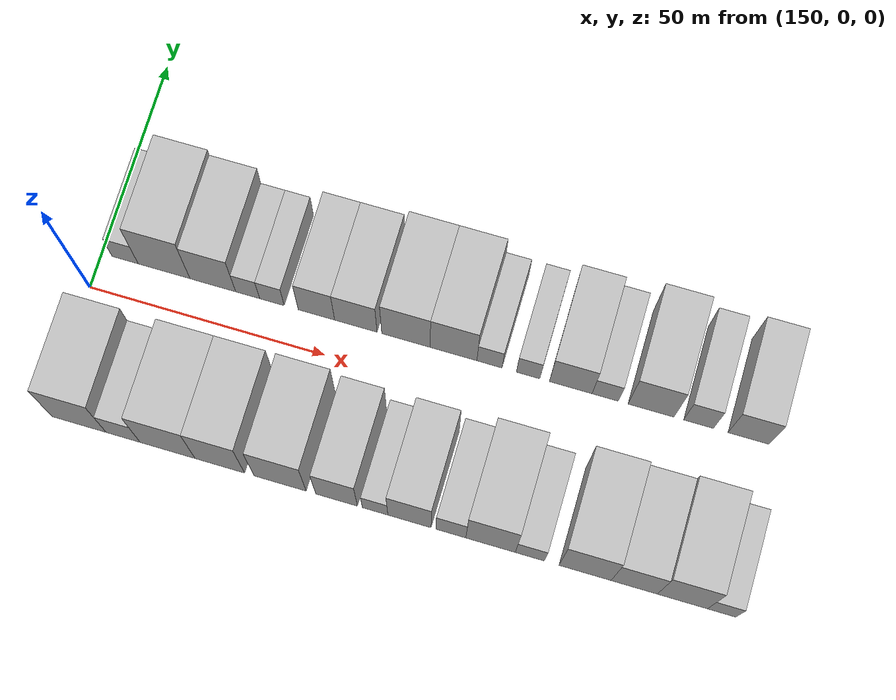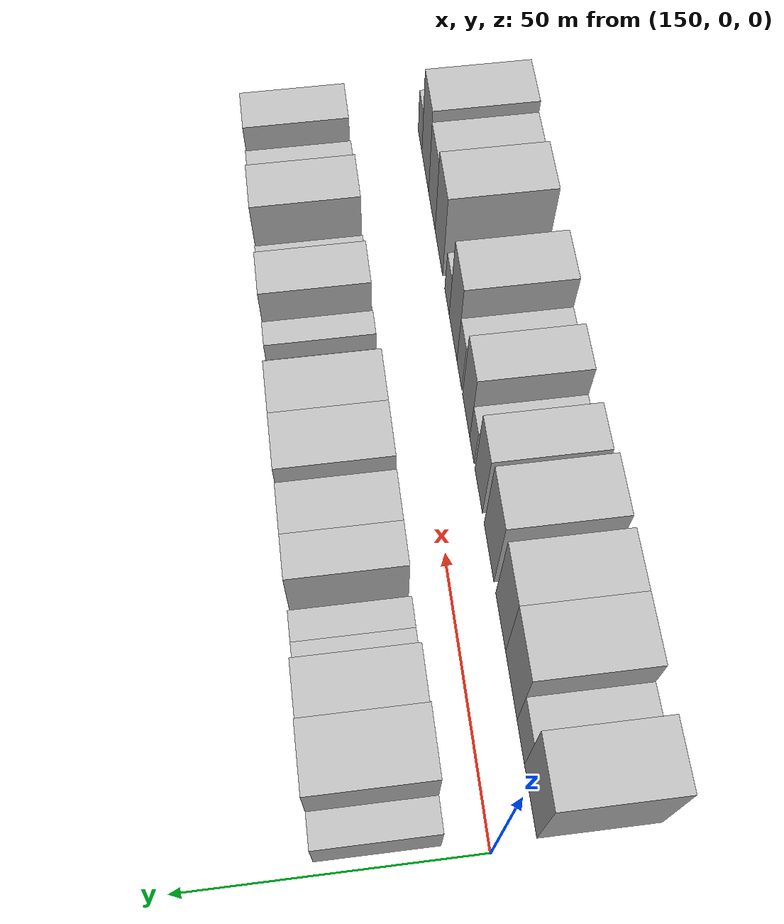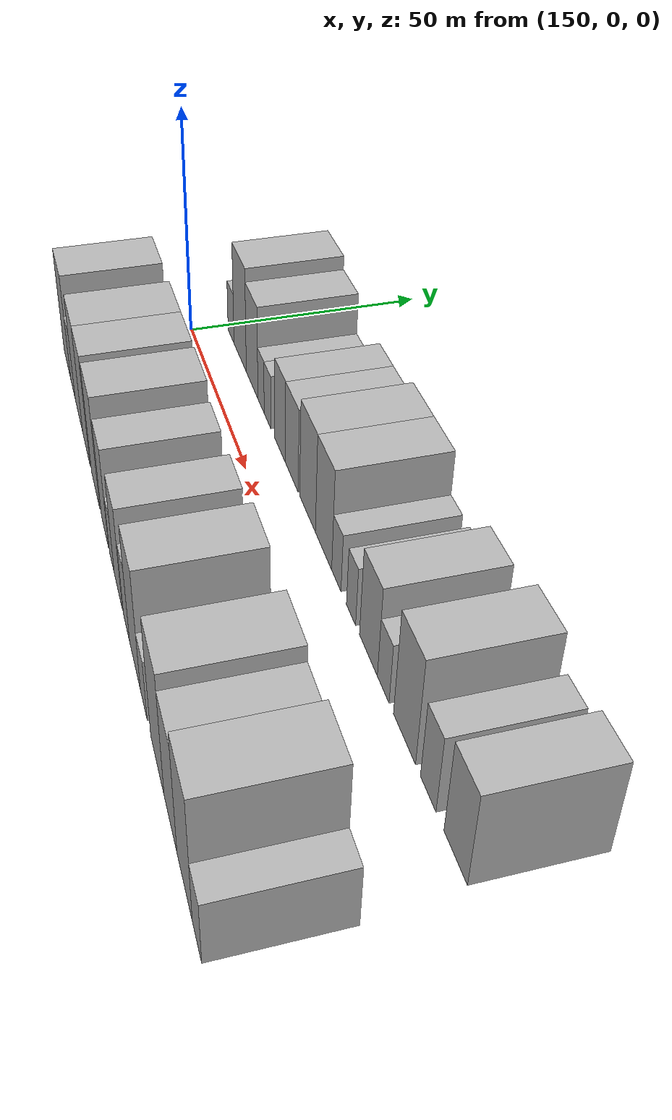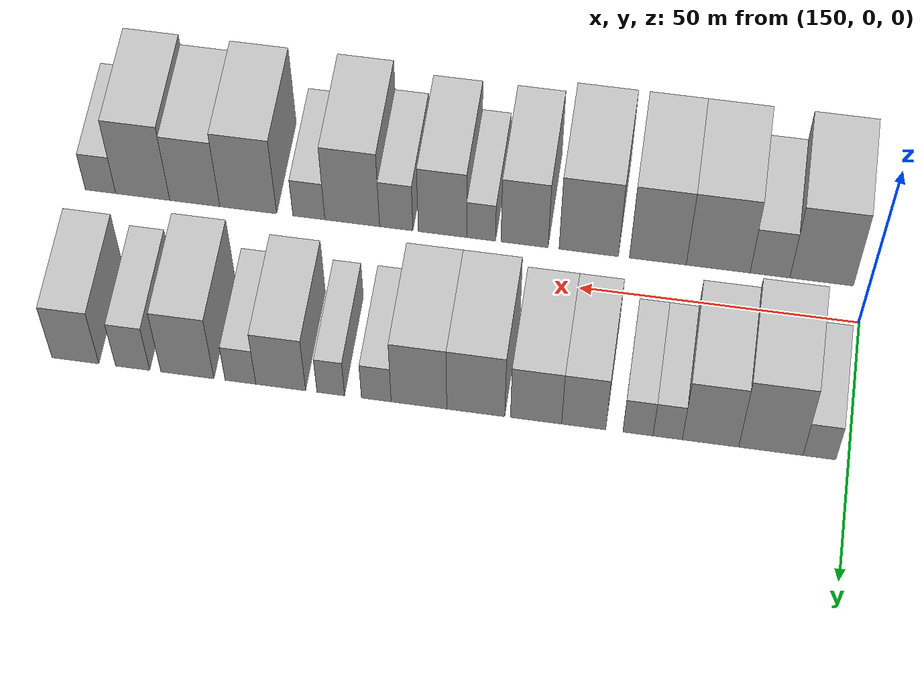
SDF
<sdf version="1.6">
 <world name="default">
  <model name="building_15">
   <static>1</static>
   <pose>154.9578 17.5000 0 0.000000 0.000000 1.570796</pose>
   <link name="link">
    <pose>0 0 6.00 0 0 0</pose>
    <collision name="collision"><geometry><box><size>20.0000 5.6526 12.0000</size></box></geometry></collision>
    <visual name="visual">
     <cast_shadows>0</cast_shadows>
     <geometry><box><size>20.0000 5.6526 12.0000</size></box></geometry>
     <material>
      <script>
       <uri>model://HANNAS_wall/materials/scripts</uri>
       <uri>model://HANNAS_wall/materials/textures</uri>
       <name>vrc/HANNAS_wall</name>
      </script>
     </material>
    </visual>
   </link>
  </model>
  <model name="building_16">
   <static>1</static>
   <pose>163.3459 17.5000 0 0.000000 0.000000 1.570796</pose>
   <link name="link">
    <pose>0 0 12.00 0 0 0</pose>
    <collision name="collision"><geometry><box><size>20.0000 11.1237 24.0000</size></box></geometry></collision>
    <visual name="visual">
     <cast_shadows>0</cast_shadows>
     <geometry><box><size>20.0000 11.1237 24.0000</size></box></geometry>
     <material>
      <script>
       <uri>model://HANNAS_wall/materials/scripts</uri>
       <uri>model://HANNAS_wall/materials/textures</uri>
       <name>vrc/HANNAS_wall</name>
      </script>
     </material>
    </visual>
   </link>
  </model>
  <model name="building_17">
   <static>1</static>
   <pose>173.8073 17.5000 0 0.000000 0.000000 1.570796</pose>
   <link name="link">
    <pose>0 0 10.50 0 0 0</pose>
    <collision name="collision"><geometry><box><size>20.0000 9.7992 21.0000</size></box></geometry></collision>
    <visual name="visual">
     <cast_shadows>0</cast_shadows>
     <geometry><box><size>20.0000 9.7992 21.0000</size></box></geometry>
     <material>
      <script>
       <uri>model://HANNAS_wall/materials/scripts</uri>
       <uri>model://HANNAS_wall/materials/textures</uri>
       <name>vrc/HANNAS_wall</name>
      </script>
     </material>
    </visual>
   </link>
  </model>
  <model name="building_18">
   <static>1</static>
   <pose>181.2581 17.5000 0 0.000000 0.000000 1.570796</pose>
   <link name="link">
    <pose>0 0 6.00 0 0 0</pose>
    <collision name="collision"><geometry><box><size>20.0000 5.1023 12.0000</size></box></geometry></collision>
    <visual name="visual">
     <cast_shadows>0</cast_shadows>
     <geometry><box><size>20.0000 5.1023 12.0000</size></box></geometry>
     <material>
      <script>
       <uri>model://HANNAS_wall/materials/scripts</uri>
       <uri>model://HANNAS_wall/materials/textures</uri>
       <name>vrc/HANNAS_wall</name>
      </script>
     </material>
    </visual>
   </link>
  </model>
  <model name="building_19">
   <static>1</static>
   <pose>186.4269 17.5000 0 0.000000 0.000000 1.570796</pose>
   <link name="link">
    <pose>0 0 6.00 0 0 0</pose>
    <collision name="collision"><geometry><box><size>20.0000 5.2354 12.0000</size></box></geometry></collision>
    <visual name="visual">
     <cast_shadows>0</cast_shadows>
     <geometry><box><size>20.0000 5.2354 12.0000</size></box></geometry>
     <material>
      <script>
       <uri>model://HANNAS_wall/materials/scripts</uri>
       <uri>model://HANNAS_wall/materials/textures</uri>
       <name>vrc/HANNAS_wall</name>
      </script>
     </material>
    </visual>
   </link>
  </model>
  <model name="building_20">
   <static>1</static>
   <pose>195.9037 17.5000 0 0.000000 0.000000 1.570796</pose>
   <link name="link">
    <pose>0 0 9.00 0 0 0</pose>
    <collision name="collision"><geometry><box><size>20.0000 7.7182 18.0000</size></box></geometry></collision>
    <visual name="visual">
     <cast_shadows>0</cast_shadows>
     <geometry><box><size>20.0000 7.7182 18.0000</size></box></geometry>
     <material>
      <script>
       <uri>model://HANNAS_wall/materials/scripts</uri>
       <uri>model://HANNAS_wall/materials/textures</uri>
       <name>vrc/HANNAS_wall</name>
      </script>
     </material>
    </visual>
   </link>
  </model>
  <model name="building_21">
   <static>1</static>
   <pose>204.2442 17.5000 0 0.000000 0.000000 1.570796</pose>
   <link name="link">
    <pose>0 0 9.00 0 0 0</pose>
    <collision name="collision"><geometry><box><size>20.0000 8.9629 18.0000</size></box></geometry></collision>
    <visual name="visual">
     <cast_shadows>0</cast_shadows>
     <geometry><box><size>20.0000 8.9629 18.0000</size></box></geometry>
     <material>
      <script>
       <uri>model://HANNAS_wall/materials/scripts</uri>
       <uri>model://HANNAS_wall/materials/textures</uri>
       <name>vrc/HANNAS_wall</name>
      </script>
     </material>
    </visual>
   </link>
  </model>
  <model name="building_22">
   <static>1</static>
   <pose>214.8280 17.5000 0 0.000000 0.000000 1.570796</pose>
   <link name="link">
    <pose>0 0 10.50 0 0 0</pose>
    <collision name="collision"><geometry><box><size>20.0000 10.2048 21.0000</size></box></geometry></collision>
    <visual name="visual">
     <cast_shadows>0</cast_shadows>
     <geometry><box><size>20.0000 10.2048 21.0000</size></box></geometry>
     <material>
      <script>
       <uri>model://HANNAS_wall/materials/scripts</uri>
       <uri>model://HANNAS_wall/materials/textures</uri>
       <name>vrc/HANNAS_wall</name>
      </script>
     </material>
    </visual>
   </link>
  </model>
  <model name="building_23">
   <static>1</static>
   <pose>224.8316 17.5000 0 0.000000 0.000000 1.570796</pose>
   <link name="link">
    <pose>0 0 10.50 0 0 0</pose>
    <collision name="collision"><geometry><box><size>20.0000 9.8024 21.0000</size></box></geometry></collision>
    <visual name="visual">
     <cast_shadows>0</cast_shadows>
     <geometry><box><size>20.0000 9.8024 21.0000</size></box></geometry>
     <material>
      <script>
       <uri>model://HANNAS_wall/materials/scripts</uri>
       <uri>model://HANNAS_wall/materials/textures</uri>
       <name>vrc/HANNAS_wall</name>
      </script>
     </material>
    </visual>
   </link>
  </model>
  <model name="building_24">
   <static>1</static>
   <pose>232.3631 17.5000 0 0.000000 0.000000 1.570796</pose>
   <link name="link">
    <pose>0 0 6.00 0 0 0</pose>
    <collision name="collision"><geometry><box><size>20.0000 5.2606 12.0000</size></box></geometry></collision>
    <visual name="visual">
     <cast_shadows>0</cast_shadows>
     <geometry><box><size>20.0000 5.2606 12.0000</size></box></geometry>
     <material>
      <script>
       <uri>model://HANNAS_wall/materials/scripts</uri>
       <uri>model://HANNAS_wall/materials/textures</uri>
       <name>vrc/HANNAS_wall</name>
      </script>
     </material>
    </visual>
   </link>
  </model>
  <model name="building_25">
   <static>1</static>
   <pose>240.4397 17.5000 0 0.000000 0.000000 1.570796</pose>
   <link name="link">
    <pose>0 0 6.00 0 0 0</pose>
    <collision name="collision"><geometry><box><size>20.0000 4.8925 12.0000</size></box></geometry></collision>
    <visual name="visual">
     <cast_shadows>0</cast_shadows>
     <geometry><box><size>20.0000 4.8925 12.0000</size></box></geometry>
     <material>
      <script>
       <uri>model://HANNAS_wall/materials/scripts</uri>
       <uri>model://HANNAS_wall/materials/textures</uri>
       <name>vrc/HANNAS_wall</name>
      </script>
     </material>
    </visual>
   </link>
  </model>
  <model name="building_26">
   <static>1</static>
   <pose>249.3211 17.5000 0 0.000000 0.000000 1.570796</pose>
   <link name="link">
    <pose>0 0 9.00 0 0 0</pose>
    <collision name="collision"><geometry><box><size>20.0000 8.8703 18.0000</size></box></geometry></collision>
    <visual name="visual">
     <cast_shadows>0</cast_shadows>
     <geometry><box><size>20.0000 8.8703 18.0000</size></box></geometry>
     <material>
      <script>
       <uri>model://HANNAS_wall/materials/scripts</uri>
       <uri>model://HANNAS_wall/materials/textures</uri>
       <name>vrc/HANNAS_wall</name>
      </script>
     </material>
    </visual>
   </link>
  </model>
  <model name="building_27">
   <static>1</static>
   <pose>256.4935 17.5000 0 0.000000 0.000000 1.570796</pose>
   <link name="link">
    <pose>0 0 6.00 0 0 0</pose>
    <collision name="collision"><geometry><box><size>20.0000 5.4745 12.0000</size></box></geometry></collision>
    <visual name="visual">
     <cast_shadows>0</cast_shadows>
     <geometry><box><size>20.0000 5.4745 12.0000</size></box></geometry>
     <material>
      <script>
       <uri>model://HANNAS_wall/materials/scripts</uri>
       <uri>model://HANNAS_wall/materials/textures</uri>
       <name>vrc/HANNAS_wall</name>
      </script>
     </material>
    </visual>
   </link>
  </model>
  <model name="building_28">
   <static>1</static>
   <pose>265.9769 17.5000 0 0.000000 0.000000 1.570796</pose>
   <link name="link">
    <pose>0 0 10.50 0 0 0</pose>
    <collision name="collision"><geometry><box><size>20.0000 9.4924 21.0000</size></box></geometry></collision>
    <visual name="visual">
     <cast_shadows>0</cast_shadows>
     <geometry><box><size>20.0000 9.4924 21.0000</size></box></geometry>
     <material>
      <script>
       <uri>model://HANNAS_wall/materials/scripts</uri>
       <uri>model://HANNAS_wall/materials/textures</uri>
       <name>vrc/HANNAS_wall</name>
      </script>
     </material>
    </visual>
   </link>
  </model>
  <model name="building_29">
   <static>1</static>
   <pose>275.7890 17.5000 0 0.000000 0.000000 1.570796</pose>
   <link name="link">
    <pose>0 0 7.50 0 0 0</pose>
    <collision name="collision"><geometry><box><size>20.0000 6.1318 15.0000</size></box></geometry></collision>
    <visual name="visual">
     <cast_shadows>0</cast_shadows>
     <geometry><box><size>20.0000 6.1318 15.0000</size></box></geometry>
     <material>
      <script>
       <uri>model://HANNAS_wall/materials/scripts</uri>
       <uri>model://HANNAS_wall/materials/textures</uri>
       <name>vrc/HANNAS_wall</name>
      </script>
     </material>
    </visual>
   </link>
  </model>
  <model name="building_30">
   <static>1</static>
   <pose>286.0715 17.5000 0 0.000000 0.000000 1.570796</pose>
   <link name="link">
    <pose>0 0 9.00 0 0 0</pose>
    <collision name="collision"><geometry><box><size>20.0000 8.4333 18.0000</size></box></geometry></collision>
    <visual name="visual">
     <cast_shadows>0</cast_shadows>
     <geometry><box><size>20.0000 8.4333 18.0000</size></box></geometry>
     <material>
      <script>
       <uri>model://HANNAS_wall/materials/scripts</uri>
       <uri>model://HANNAS_wall/materials/textures</uri>
       <name>vrc/HANNAS_wall</name>
      </script>
     </material>
    </visual>
   </link>
  </model>
  <model name="building_45">
   <static>1</static>
   <pose>157.1561 -17.5000 0 0.000000 0.000000 1.570796</pose>
   <link name="link">
    <pose>0 0 12.00 0 0 0</pose>
    <collision name="collision"><geometry><box><size>20.0000 11.4148 24.0000</size></box></geometry></collision>
    <visual name="visual">
     <cast_shadows>0</cast_shadows>
     <geometry><box><size>20.0000 11.4148 24.0000</size></box></geometry>
     <material>
      <script>
       <uri>model://HANNAS_wall/materials/scripts</uri>
       <uri>model://HANNAS_wall/materials/textures</uri>
       <name>vrc/HANNAS_wall</name>
      </script>
     </material>
    </visual>
   </link>
  </model>
  <model name="building_46">
   <static>1</static>
   <pose>166.4401 -17.5000 0 0.000000 0.000000 1.570796</pose>
   <link name="link">
    <pose>0 0 7.50 0 0 0</pose>
    <collision name="collision"><geometry><box><size>20.0000 7.1533 15.0000</size></box></geometry></collision>
    <visual name="visual">
     <cast_shadows>0</cast_shadows>
     <geometry><box><size>20.0000 7.1533 15.0000</size></box></geometry>
     <material>
      <script>
       <uri>model://HANNAS_wall/materials/scripts</uri>
       <uri>model://HANNAS_wall/materials/textures</uri>
       <name>vrc/HANNAS_wall</name>
      </script>
     </material>
    </visual>
   </link>
  </model>
  <model name="building_47">
   <static>1</static>
   <pose>175.7845 -17.5000 0 0.000000 0.000000 1.570796</pose>
   <link name="link">
    <pose>0 0 12.00 0 0 0</pose>
    <collision name="collision"><geometry><box><size>20.0000 11.5354 24.0000</size></box></geometry></collision>
    <visual name="visual">
     <cast_shadows>0</cast_shadows>
     <geometry><box><size>20.0000 11.5354 24.0000</size></box></geometry>
     <material>
      <script>
       <uri>model://HANNAS_wall/materials/scripts</uri>
       <uri>model://HANNAS_wall/materials/textures</uri>
       <name>vrc/HANNAS_wall</name>
      </script>
     </material>
    </visual>
   </link>
  </model>
  <model name="building_48">
   <static>1</static>
   <pose>186.6965 -17.5000 0 0.000000 0.000000 1.570796</pose>
   <link name="link">
    <pose>0 0 12.00 0 0 0</pose>
    <collision name="collision"><geometry><box><size>20.0000 10.2885 24.0000</size></box></geometry></collision>
    <visual name="visual">
     <cast_shadows>0</cast_shadows>
     <geometry><box><size>20.0000 10.2885 24.0000</size></box></geometry>
     <material>
      <script>
       <uri>model://HANNAS_wall/materials/scripts</uri>
       <uri>model://HANNAS_wall/materials/textures</uri>
       <name>vrc/HANNAS_wall</name>
      </script>
     </material>
    </visual>
   </link>
  </model>
  <model name="building_49">
   <static>1</static>
   <pose>199.2378 -17.5000 0 0.000000 0.000000 1.570796</pose>
   <link name="link">
    <pose>0 0 12.00 0 0 0</pose>
    <collision name="collision"><geometry><box><size>20.0000 10.7942 24.0000</size></box></geometry></collision>
    <visual name="visual">
     <cast_shadows>0</cast_shadows>
     <geometry><box><size>20.0000 10.7942 24.0000</size></box></geometry>
     <material>
      <script>
       <uri>model://HANNAS_wall/materials/scripts</uri>
       <uri>model://HANNAS_wall/materials/textures</uri>
       <name>vrc/HANNAS_wall</name>
      </script>
     </material>
    </visual>
   </link>
  </model>
  <model name="building_50">
   <static>1</static>
   <pose>210.9347 -17.5000 0 0.000000 0.000000 1.570796</pose>
   <link name="link">
    <pose>0 0 10.50 0 0 0</pose>
    <collision name="collision"><geometry><box><size>20.0000 8.5995 21.0000</size></box></geometry></collision>
    <visual name="visual">
     <cast_shadows>0</cast_shadows>
     <geometry><box><size>20.0000 8.5995 21.0000</size></box></geometry>
     <material>
      <script>
       <uri>model://HANNAS_wall/materials/scripts</uri>
       <uri>model://HANNAS_wall/materials/textures</uri>
       <name>vrc/HANNAS_wall</name>
      </script>
     </material>
    </visual>
   </link>
  </model>
  <model name="building_51">
   <static>1</static>
   <pose>218.8745 -17.5000 0 0.000000 0.000000 1.570796</pose>
   <link name="link">
    <pose>0 0 6.00 0 0 0</pose>
    <collision name="collision"><geometry><box><size>20.0000 5.2801 12.0000</size></box></geometry></collision>
    <visual name="visual">
     <cast_shadows>0</cast_shadows>
     <geometry><box><size>20.0000 5.2801 12.0000</size></box></geometry>
     <material>
      <script>
       <uri>model://HANNAS_wall/materials/scripts</uri>
       <uri>model://HANNAS_wall/materials/textures</uri>
       <name>vrc/HANNAS_wall</name>
      </script>
     </material>
    </visual>
   </link>
  </model>
  <model name="building_52">
   <static>1</static>
   <pose>225.9429 -17.5000 0 0.000000 0.000000 1.570796</pose>
   <link name="link">
    <pose>0 0 10.50 0 0 0</pose>
    <collision name="collision"><geometry><box><size>20.0000 8.8569 21.0000</size></box></geometry></collision>
    <visual name="visual">
     <cast_shadows>0</cast_shadows>
     <geometry><box><size>20.0000 8.8569 21.0000</size></box></geometry>
     <material>
      <script>
       <uri>model://HANNAS_wall/materials/scripts</uri>
       <uri>model://HANNAS_wall/materials/textures</uri>
       <name>vrc/HANNAS_wall</name>
      </script>
     </material>
    </visual>
   </link>
  </model>
  <model name="building_53">
   <static>1</static>
   <pose>234.4345 -17.5000 0 0.000000 0.000000 1.570796</pose>
   <link name="link">
    <pose>0 0 7.50 0 0 0</pose>
    <collision name="collision"><geometry><box><size>20.0000 6.1263 15.0000</size></box></geometry></collision>
    <visual name="visual">
     <cast_shadows>0</cast_shadows>
     <geometry><box><size>20.0000 6.1263 15.0000</size></box></geometry>
     <material>
      <script>
       <uri>model://HANNAS_wall/materials/scripts</uri>
       <uri>model://HANNAS_wall/materials/textures</uri>
       <name>vrc/HANNAS_wall</name>
      </script>
     </material>
    </visual>
   </link>
  </model>
  <model name="building_54">
   <static>1</static>
   <pose>242.5474 -17.5000 0 0.000000 0.000000 1.570796</pose>
   <link name="link">
    <pose>0 0 12.00 0 0 0</pose>
    <collision name="collision"><geometry><box><size>20.0000 10.0995 24.0000</size></box></geometry></collision>
    <visual name="visual">
     <cast_shadows>0</cast_shadows>
     <geometry><box><size>20.0000 10.0995 24.0000</size></box></geometry>
     <material>
      <script>
       <uri>model://HANNAS_wall/materials/scripts</uri>
       <uri>model://HANNAS_wall/materials/textures</uri>
       <name>vrc/HANNAS_wall</name>
      </script>
     </material>
    </visual>
   </link>
  </model>
  <model name="building_55">
   <static>1</static>
   <pose>250.5507 -17.5000 0 0.000000 0.000000 1.570796</pose>
   <link name="link">
    <pose>0 0 6.00 0 0 0</pose>
    <collision name="collision"><geometry><box><size>20.0000 5.9071 12.0000</size></box></geometry></collision>
    <visual name="visual">
     <cast_shadows>0</cast_shadows>
     <geometry><box><size>20.0000 5.9071 12.0000</size></box></geometry>
     <material>
      <script>
       <uri>model://HANNAS_wall/materials/scripts</uri>
       <uri>model://HANNAS_wall/materials/textures</uri>
       <name>vrc/HANNAS_wall</name>
      </script>
     </material>
    </visual>
   </link>
  </model>
  <model name="building_56">
   <static>1</static>
   <pose>261.7849 -17.5000 0 0.000000 0.000000 1.570796</pose>
   <link name="link">
    <pose>0 0 12.00 0 0 0</pose>
    <collision name="collision"><geometry><box><size>20.0000 10.5612 24.0000</size></box></geometry></collision>
    <visual name="visual">
     <cast_shadows>0</cast_shadows>
     <geometry><box><size>20.0000 10.5612 24.0000</size></box></geometry>
     <material>
      <script>
       <uri>model://HANNAS_wall/materials/scripts</uri>
       <uri>model://HANNAS_wall/materials/textures</uri>
       <name>vrc/HANNAS_wall</name>
      </script>
     </material>
    </visual>
   </link>
  </model>
  <model name="building_57">
   <static>1</static>
   <pose>271.7252 -17.5000 0 0.000000 0.000000 1.570796</pose>
   <link name="link">
    <pose>0 0 10.50 0 0 0</pose>
    <collision name="collision"><geometry><box><size>20.0000 9.3195 21.0000</size></box></geometry></collision>
    <visual name="visual">
     <cast_shadows>0</cast_shadows>
     <geometry><box><size>20.0000 9.3195 21.0000</size></box></geometry>
     <material>
      <script>
       <uri>model://HANNAS_wall/materials/scripts</uri>
       <uri>model://HANNAS_wall/materials/textures</uri>
       <name>vrc/HANNAS_wall</name>
      </script>
     </material>
    </visual>
   </link>
  </model>
  <model name="building_58">
   <static>1</static>
   <pose>281.4269 -17.5000 0 0.000000 0.000000 1.570796</pose>
   <link name="link">
    <pose>0 0 12.00 0 0 0</pose>
    <collision name="collision"><geometry><box><size>20.0000 10.0839 24.0000</size></box></geometry></collision>
    <visual name="visual">
     <cast_shadows>0</cast_shadows>
     <geometry><box><size>20.0000 10.0839 24.0000</size></box></geometry>
     <material>
      <script>
       <uri>model://HANNAS_wall/materials/scripts</uri>
       <uri>model://HANNAS_wall/materials/textures</uri>
       <name>vrc/HANNAS_wall</name>
      </script>
     </material>
    </visual>
   </link>
  </model>
  <model name="building_59">
   <static>1</static>
   <pose>289.3110 -17.5000 0 0.000000 0.000000 1.570796</pose>
   <link name="link">
    <pose>0 0 6.00 0 0 0</pose>
    <collision name="collision"><geometry><box><size>20.0000 5.6844 12.0000</size></box></geometry></collision>
    <visual name="visual">
     <cast_shadows>0</cast_shadows>
     <geometry><box><size>20.0000 5.6844 12.0000</size></box></geometry>
     <material>
      <script>
       <uri>model://HANNAS_wall/materials/scripts</uri>
       <uri>model://HANNAS_wall/materials/textures</uri>
       <name>vrc/HANNAS_wall</name>
      </script>
     </material>
    </visual>
   </link>
  </model>
 </world>
</sdf>
